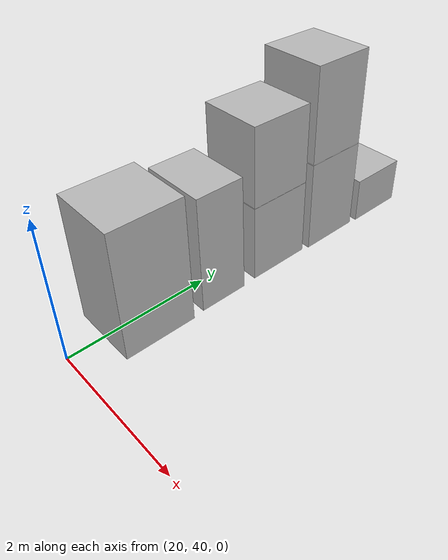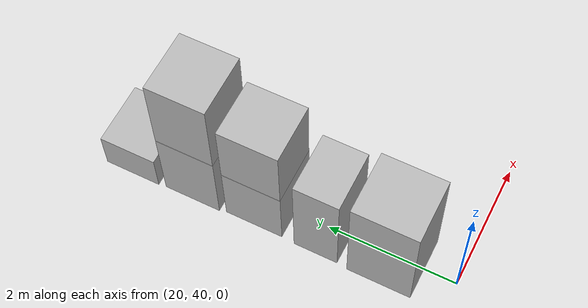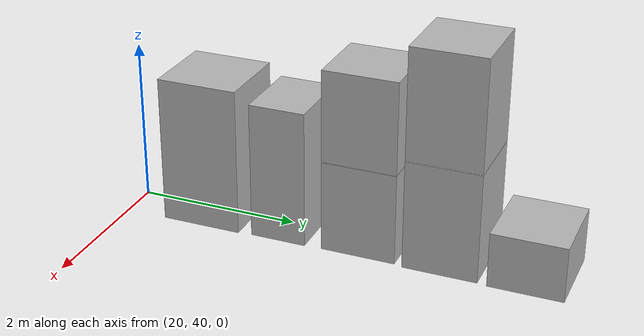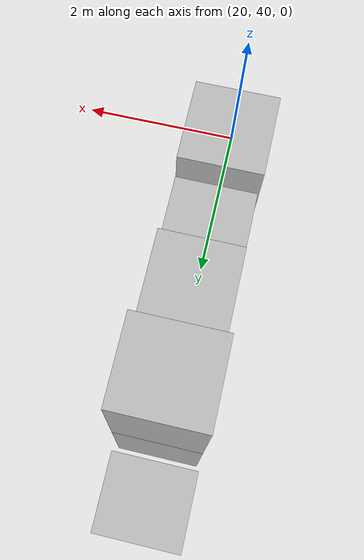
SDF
<sdf version="1.5">
 <world name="default">
  <model name="ground_plane">
   <static>true</static>
   <link name="link">
    <collision name="collision">
     <geometry><plane><normal>0 0 1</normal><size>250 250</size></plane></geometry>
     <surface><friction><ode><mu>1</mu><mu2>1</mu2></ode></friction></surface>
    </collision>
    <visual name="grass">
     <cast_shadows>false</cast_shadows>
     <geometry><mesh><uri>file://grass_plane/meshes/grass_plane.dae</uri></mesh></geometry>
    </visual>
   </link>
  </model>
  <model name="Cardboard_box_591">
   <link name="link_0">
    <pose>20 41 0 0 0 0</pose>
    <inertial>
     <mass>1</mass>
     <inertia>
      <ixx>0.166667</ixx>
      <ixy>0</ixy>
      <ixz>0</ixz>
      <iyy>0.166667</iyy>
      <iyz>0</iyz>
      <izz>0.166667</izz>
     </inertia>
    </inertial>
    <collision name="collision">
     <geometry>
      <mesh>
       <uri>model://Cardboard_box/meshes/cardboard_box.dae</uri>
       <scale>2.4280343649 2.48924124539 4.59965441611</scale>
      </mesh>
     </geometry>
    </collision>
    <visual name="visual">
     <geometry>
      <mesh>
       <uri>model://Cardboard_box/meshes/cardboard_box.dae</uri>
       <scale>2.4280343649 2.48924124539 4.59965441611</scale>
      </mesh>
     </geometry>
    </visual>
   </link>
   <static>1</static>
  </model>
  <model name="Cardboard_box_592">
   <link name="link_0">
    <pose>20 42 0 0 0 0</pose>
    <inertial>
     <mass>1</mass>
     <inertia>
      <ixx>0.166667</ixx>
      <ixy>0</ixy>
      <ixz>0</ixz>
      <iyy>0.166667</iyy>
      <iyz>0</iyz>
      <izz>0.166667</izz>
     </inertia>
    </inertial>
    <collision name="collision">
     <geometry>
      <mesh>
       <uri>model://Cardboard_box/meshes/cardboard_box.dae</uri>
       <scale>2.30436925641 1.72677901933 4.25555925067</scale>
      </mesh>
     </geometry>
    </collision>
    <visual name="visual">
     <geometry>
      <mesh>
       <uri>model://Cardboard_box/meshes/cardboard_box.dae</uri>
       <scale>2.30436925641 1.72677901933 4.25555925067</scale>
      </mesh>
     </geometry>
    </visual>
   </link>
   <static>1</static>
  </model>
  <model name="Cardboard_box_593">
   <link name="link_0">
    <pose>20 43 0 0 0 0</pose>
    <inertial>
     <mass>1</mass>
     <inertia>
      <ixx>0.166667</ixx>
      <ixy>0</ixy>
      <ixz>0</ixz>
      <iyy>0.166667</iyy>
      <iyz>0</iyz>
      <izz>0.166667</izz>
     </inertia>
    </inertial>
    <collision name="collision">
     <geometry>
      <mesh>
       <uri>model://Cardboard_box/meshes/cardboard_box.dae</uri>
       <scale>2.22179657234 2.28443275379 2.83241999248</scale>
      </mesh>
     </geometry>
    </collision>
    <visual name="visual">
     <geometry>
      <mesh>
       <uri>model://Cardboard_box/meshes/cardboard_box.dae</uri>
       <scale>2.22179657234 2.28443275379 2.83241999248</scale>
      </mesh>
     </geometry>
    </visual>
   </link>
   <static>1</static>
  </model>
  <model name="Cardboard_box_top_593">
   <link name="link_0">
    <pose>20 43 1.13296799699 0 0 0</pose>
    <inertial>
     <mass>1</mass>
     <inertia>
      <ixx>0.166667</ixx>
      <ixy>0</ixy>
      <ixz>0</ixz>
      <iyy>0.166667</iyy>
      <iyz>0</iyz>
      <izz>0.166667</izz>
     </inertia>
    </inertial>
    <collision name="collision">
     <geometry>
      <mesh>
       <uri>model://Cardboard_box/meshes/cardboard_box.dae</uri>
       <scale>2.22179657234 2.28443275379 2.83241999248</scale>
      </mesh>
     </geometry>
    </collision>
    <visual name="visual">
     <geometry>
      <mesh>
       <uri>model://Cardboard_box/meshes/cardboard_box.dae</uri>
       <scale>2.22179657234 2.28443275379 2.83241999248</scale>
      </mesh>
     </geometry>
    </visual>
   </link>
   <static>1</static>
  </model>
  <model name="Cardboard_box_594">
   <link name="link_0">
    <pose>20 44 0 0 0 0</pose>
    <inertial>
     <mass>1</mass>
     <inertia>
      <ixx>0.166667</ixx>
      <ixy>0</ixy>
      <ixz>0</ixz>
      <iyy>0.166667</iyy>
      <iyz>0</iyz>
      <izz>0.166667</izz>
     </inertia>
    </inertial>
    <collision name="collision">
     <geometry>
      <mesh>
       <uri>model://Cardboard_box/meshes/cardboard_box.dae</uri>
       <scale>2.37328871297 2.25171000937 3.39168851988</scale>
      </mesh>
     </geometry>
    </collision>
    <visual name="visual">
     <geometry>
      <mesh>
       <uri>model://Cardboard_box/meshes/cardboard_box.dae</uri>
       <scale>2.37328871297 2.25171000937 3.39168851988</scale>
      </mesh>
     </geometry>
    </visual>
   </link>
   <static>1</static>
  </model>
  <model name="Cardboard_box_top_594">
   <link name="link_0">
    <pose>20 44 1.35667540795 0 0 0</pose>
    <inertial>
     <mass>1</mass>
     <inertia>
      <ixx>0.166667</ixx>
      <ixy>0</ixy>
      <ixz>0</ixz>
      <iyy>0.166667</iyy>
      <iyz>0</iyz>
      <izz>0.166667</izz>
     </inertia>
    </inertial>
    <collision name="collision">
     <geometry>
      <mesh>
       <uri>model://Cardboard_box/meshes/cardboard_box.dae</uri>
       <scale>2.37328871297 2.25171000937 3.39168851988</scale>
      </mesh>
     </geometry>
    </collision>
    <visual name="visual">
     <geometry>
      <mesh>
       <uri>model://Cardboard_box/meshes/cardboard_box.dae</uri>
       <scale>2.37328871297 2.25171000937 3.39168851988</scale>
      </mesh>
     </geometry>
    </visual>
   </link>
   <static>1</static>
  </model>
  <model name="Cardboard_box_595">
   <link name="link_0">
    <pose>20 45 0 0 0 0</pose>
    <inertial>
     <mass>1</mass>
     <inertia>
      <ixx>0.166667</ixx>
      <ixy>0</ixy>
      <ixz>0</ixz>
      <iyy>0.166667</iyy>
      <iyz>0</iyz>
      <izz>0.166667</izz>
     </inertia>
    </inertial>
    <collision name="collision">
     <geometry>
      <mesh>
       <uri>model://Cardboard_box/meshes/cardboard_box.dae</uri>
       <scale>2.4670551635 2.21532120458 1.69052159747</scale>
      </mesh>
     </geometry>
    </collision>
    <visual name="visual">
     <geometry>
      <mesh>
       <uri>model://Cardboard_box/meshes/cardboard_box.dae</uri>
       <scale>2.4670551635 2.21532120458 1.69052159747</scale>
      </mesh>
     </geometry>
    </visual>
   </link>
   <static>1</static>
  </model>
 </world>
</sdf>
